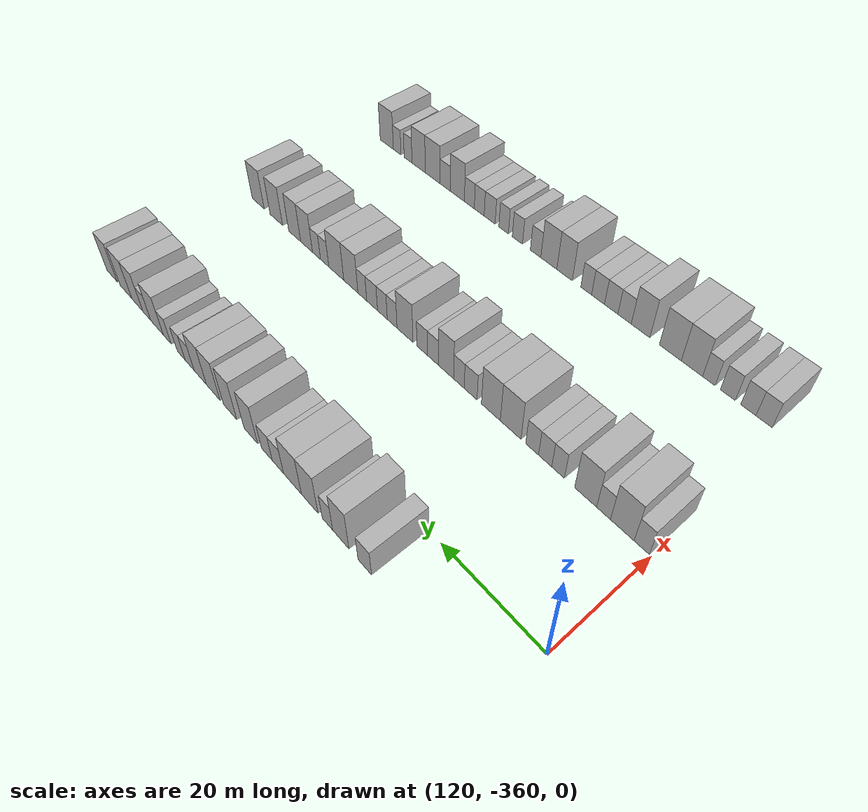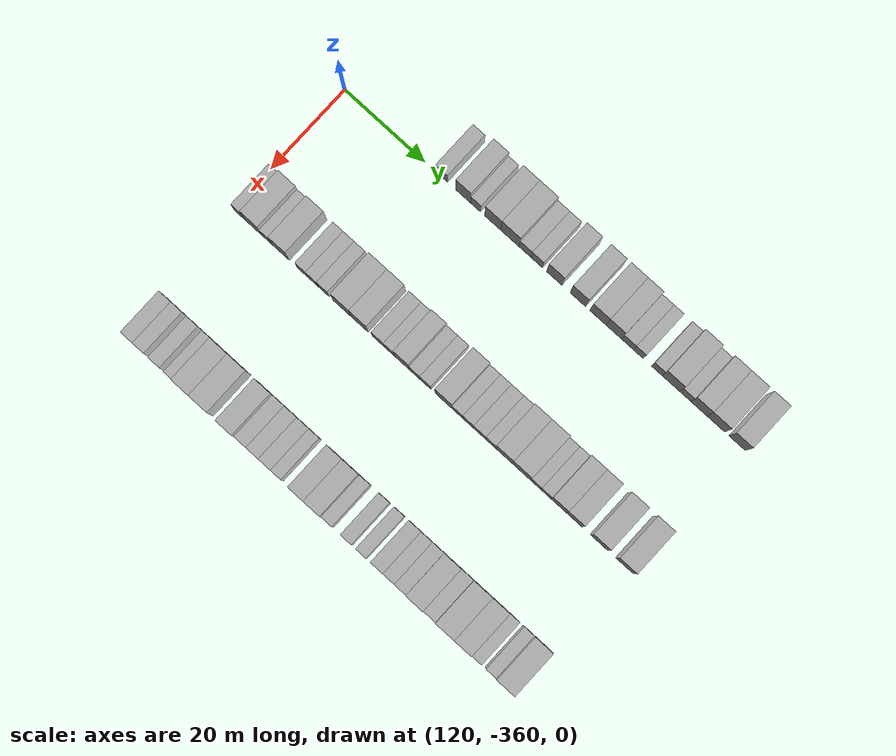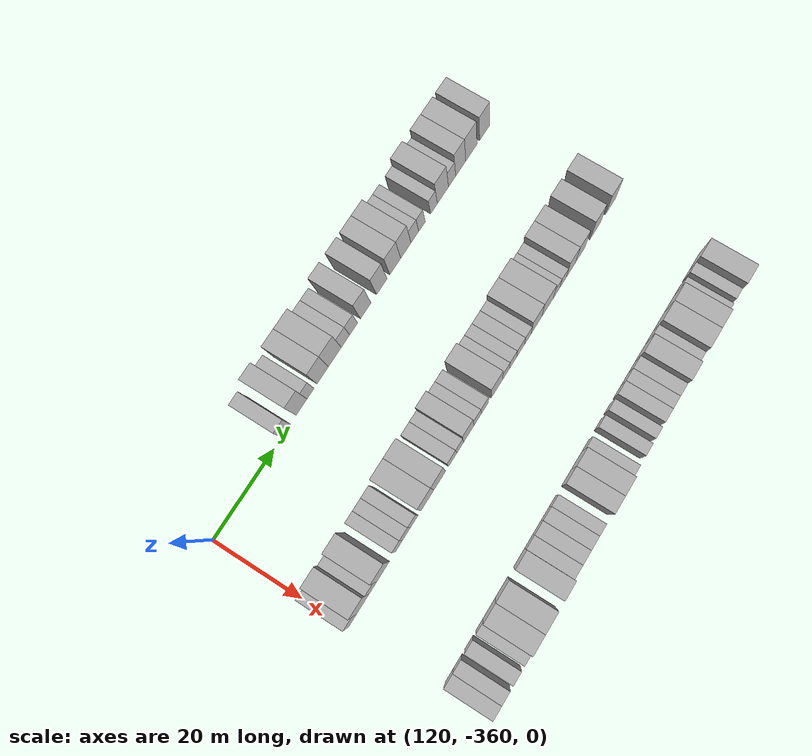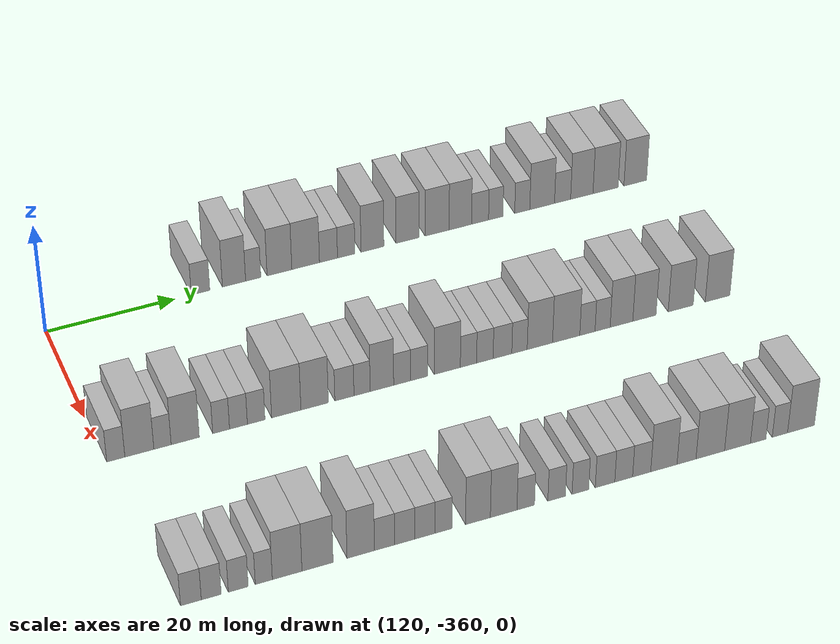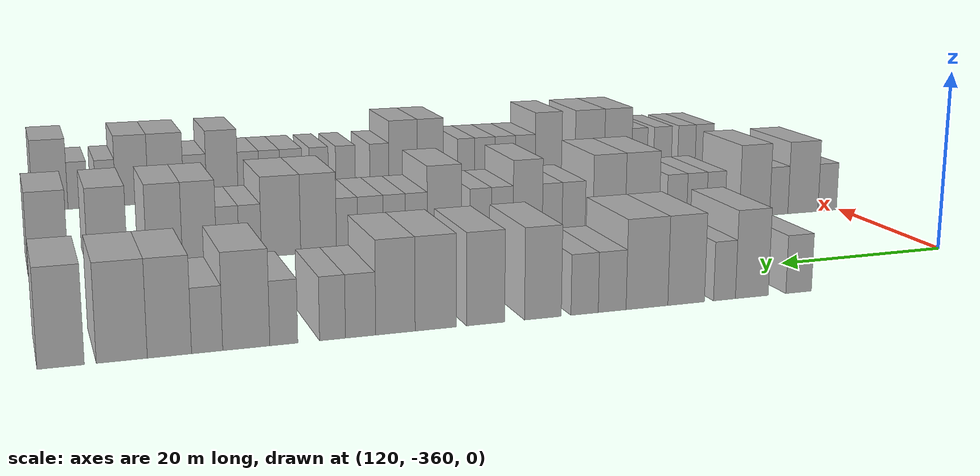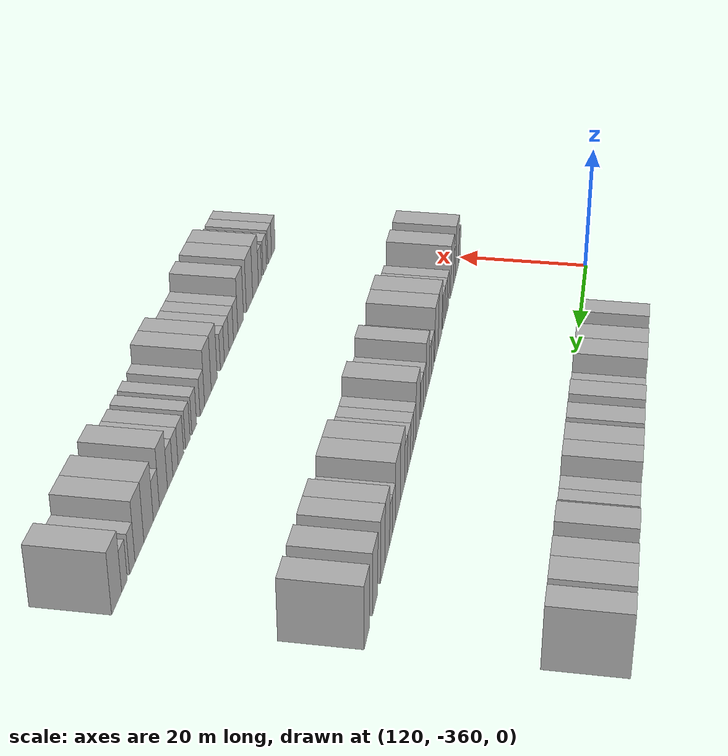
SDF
<sdf version="1.6">
 <world name="default">
  <model name="building_681">
   <static>1</static>
   <pose>115.0000 -335.9888 0 0.000000 0.000000 0.000000</pose>
   <link name="link">
    <pose>0 0 3.00 0 0 0</pose>
    <collision name="collision"><geometry><box><size>10.0000 2.9338 6.0000</size></box></geometry></collision>
    <visual name="visual">
     <cast_shadows>0</cast_shadows>
     <geometry><box><size>10.0000 2.9338 6.0000</size></box></geometry>
     <material>
      <script>
       <uri>model://HANNAS_wall/materials/scripts</uri>
       <uri>model://HANNAS_wall/materials/textures</uri>
       <name>vrc/HANNAS_wall</name>
      </script>
     </material>
    </visual>
   </link>
  </model>
  <model name="building_682">
   <static>1</static>
   <pose>115.0000 -330.6769 0 0.000000 0.000000 0.000000</pose>
   <link name="link">
    <pose>0 0 4.50 0 0 0</pose>
    <collision name="collision"><geometry><box><size>10.0000 3.6901 9.0000</size></box></geometry></collision>
    <visual name="visual">
     <cast_shadows>0</cast_shadows>
     <geometry><box><size>10.0000 3.6901 9.0000</size></box></geometry>
     <material>
      <script>
       <uri>model://HANNAS_wall/materials/scripts</uri>
       <uri>model://HANNAS_wall/materials/textures</uri>
       <name>vrc/HANNAS_wall</name>
      </script>
     </material>
    </visual>
   </link>
  </model>
  <model name="building_683">
   <static>1</static>
   <pose>115.0000 -327.6175 0 0.000000 0.000000 0.000000</pose>
   <link name="link">
    <pose>0 0 3.00 0 0 0</pose>
    <collision name="collision"><geometry><box><size>10.0000 2.4287 6.0000</size></box></geometry></collision>
    <visual name="visual">
     <cast_shadows>0</cast_shadows>
     <geometry><box><size>10.0000 2.4287 6.0000</size></box></geometry>
     <material>
      <script>
       <uri>model://HANNAS_wall/materials/scripts</uri>
       <uri>model://HANNAS_wall/materials/textures</uri>
       <name>vrc/HANNAS_wall</name>
      </script>
     </material>
    </visual>
   </link>
  </model>
  <model name="building_684">
   <static>1</static>
   <pose>115.0000 -323.4110 0 0.000000 0.000000 0.000000</pose>
   <link name="link">
    <pose>0 0 4.50 0 0 0</pose>
    <collision name="collision"><geometry><box><size>10.0000 3.9842 9.0000</size></box></geometry></collision>
    <visual name="visual">
     <cast_shadows>0</cast_shadows>
     <geometry><box><size>10.0000 3.9842 9.0000</size></box></geometry>
     <material>
      <script>
       <uri>model://HANNAS_wall/materials/scripts</uri>
       <uri>model://HANNAS_wall/materials/textures</uri>
       <name>vrc/HANNAS_wall</name>
      </script>
     </material>
    </visual>
   </link>
  </model>
  <model name="building_685">
   <static>1</static>
   <pose>115.0000 -319.1854 0 0.000000 0.000000 0.000000</pose>
   <link name="link">
    <pose>0 0 4.50 0 0 0</pose>
    <collision name="collision"><geometry><box><size>10.0000 4.4669 9.0000</size></box></geometry></collision>
    <visual name="visual">
     <cast_shadows>0</cast_shadows>
     <geometry><box><size>10.0000 4.4669 9.0000</size></box></geometry>
     <material>
      <script>
       <uri>model://HANNAS_wall/materials/scripts</uri>
       <uri>model://HANNAS_wall/materials/textures</uri>
       <name>vrc/HANNAS_wall</name>
      </script>
     </material>
    </visual>
   </link>
  </model>
  <model name="building_686">
   <static>1</static>
   <pose>115.0000 -315.4877 0 0.000000 0.000000 0.000000</pose>
   <link name="link">
    <pose>0 0 3.00 0 0 0</pose>
    <collision name="collision"><geometry><box><size>10.0000 2.9286 6.0000</size></box></geometry></collision>
    <visual name="visual">
     <cast_shadows>0</cast_shadows>
     <geometry><box><size>10.0000 2.9286 6.0000</size></box></geometry>
     <material>
      <script>
       <uri>model://HANNAS_wall/materials/scripts</uri>
       <uri>model://HANNAS_wall/materials/textures</uri>
       <name>vrc/HANNAS_wall</name>
      </script>
     </material>
    </visual>
   </link>
  </model>
  <model name="building_687">
   <static>1</static>
   <pose>115.0000 -312.6045 0 0.000000 0.000000 0.000000</pose>
   <link name="link">
    <pose>0 0 3.00 0 0 0</pose>
    <collision name="collision"><geometry><box><size>10.0000 2.8377 6.0000</size></box></geometry></collision>
    <visual name="visual">
     <cast_shadows>0</cast_shadows>
     <geometry><box><size>10.0000 2.8377 6.0000</size></box></geometry>
     <material>
      <script>
       <uri>model://HANNAS_wall/materials/scripts</uri>
       <uri>model://HANNAS_wall/materials/textures</uri>
       <name>vrc/HANNAS_wall</name>
      </script>
     </material>
    </visual>
   </link>
  </model>
  <model name="building_688">
   <static>1</static>
   <pose>115.0000 -308.3114 0 0.000000 0.000000 0.000000</pose>
   <link name="link">
    <pose>0 0 4.50 0 0 0</pose>
    <collision name="collision"><geometry><box><size>10.0000 3.7486 9.0000</size></box></geometry></collision>
    <visual name="visual">
     <cast_shadows>0</cast_shadows>
     <geometry><box><size>10.0000 3.7486 9.0000</size></box></geometry>
     <material>
      <script>
       <uri>model://HANNAS_wall/materials/scripts</uri>
       <uri>model://HANNAS_wall/materials/textures</uri>
       <name>vrc/HANNAS_wall</name>
      </script>
     </material>
    </visual>
   </link>
  </model>
  <model name="building_689">
   <static>1</static>
   <pose>115.0000 -302.5397 0 0.000000 0.000000 0.000000</pose>
   <link name="link">
    <pose>0 0 4.50 0 0 0</pose>
    <collision name="collision"><geometry><box><size>10.0000 3.7947 9.0000</size></box></geometry></collision>
    <visual name="visual">
     <cast_shadows>0</cast_shadows>
     <geometry><box><size>10.0000 3.7947 9.0000</size></box></geometry>
     <material>
      <script>
       <uri>model://HANNAS_wall/materials/scripts</uri>
       <uri>model://HANNAS_wall/materials/textures</uri>
       <name>vrc/HANNAS_wall</name>
      </script>
     </material>
    </visual>
   </link>
  </model>
  <model name="building_690">
   <static>1</static>
   <pose>115.0000 -297.6399 0 0.000000 0.000000 0.000000</pose>
   <link name="link">
    <pose>0 0 4.50 0 0 0</pose>
    <collision name="collision"><geometry><box><size>10.0000 4.0050 9.0000</size></box></geometry></collision>
    <visual name="visual">
     <cast_shadows>0</cast_shadows>
     <geometry><box><size>10.0000 4.0050 9.0000</size></box></geometry>
     <material>
      <script>
       <uri>model://HANNAS_wall/materials/scripts</uri>
       <uri>model://HANNAS_wall/materials/textures</uri>
       <name>vrc/HANNAS_wall</name>
      </script>
     </material>
    </visual>
   </link>
  </model>
  <model name="building_691">
   <static>1</static>
   <pose>115.0000 -293.7571 0 0.000000 0.000000 0.000000</pose>
   <link name="link">
    <pose>0 0 4.50 0 0 0</pose>
    <collision name="collision"><geometry><box><size>10.0000 3.7605 9.0000</size></box></geometry></collision>
    <visual name="visual">
     <cast_shadows>0</cast_shadows>
     <geometry><box><size>10.0000 3.7605 9.0000</size></box></geometry>
     <material>
      <script>
       <uri>model://HANNAS_wall/materials/scripts</uri>
       <uri>model://HANNAS_wall/materials/textures</uri>
       <name>vrc/HANNAS_wall</name>
      </script>
     </material>
    </visual>
   </link>
  </model>
  <model name="building_692">
   <static>1</static>
   <pose>115.0000 -290.4525 0 0.000000 0.000000 0.000000</pose>
   <link name="link">
    <pose>0 0 3.00 0 0 0</pose>
    <collision name="collision"><geometry><box><size>10.0000 2.8488 6.0000</size></box></geometry></collision>
    <visual name="visual">
     <cast_shadows>0</cast_shadows>
     <geometry><box><size>10.0000 2.8488 6.0000</size></box></geometry>
     <material>
      <script>
       <uri>model://HANNAS_wall/materials/scripts</uri>
       <uri>model://HANNAS_wall/materials/textures</uri>
       <name>vrc/HANNAS_wall</name>
      </script>
     </material>
    </visual>
   </link>
  </model>
  <model name="building_693">
   <static>1</static>
   <pose>115.0000 -287.8225 0 0.000000 0.000000 0.000000</pose>
   <link name="link">
    <pose>0 0 3.00 0 0 0</pose>
    <collision name="collision"><geometry><box><size>10.0000 2.4112 6.0000</size></box></geometry></collision>
    <visual name="visual">
     <cast_shadows>0</cast_shadows>
     <geometry><box><size>10.0000 2.4112 6.0000</size></box></geometry>
     <material>
      <script>
       <uri>model://HANNAS_wall/materials/scripts</uri>
       <uri>model://HANNAS_wall/materials/textures</uri>
       <name>vrc/HANNAS_wall</name>
      </script>
     </material>
    </visual>
   </link>
  </model>
  <model name="building_694">
   <static>1</static>
   <pose>115.0000 -283.3413 0 0.000000 0.000000 0.000000</pose>
   <link name="link">
    <pose>0 0 3.00 0 0 0</pose>
    <collision name="collision"><geometry><box><size>10.0000 2.5512 6.0000</size></box></geometry></collision>
    <visual name="visual">
     <cast_shadows>0</cast_shadows>
     <geometry><box><size>10.0000 2.5512 6.0000</size></box></geometry>
     <material>
      <script>
       <uri>model://HANNAS_wall/materials/scripts</uri>
       <uri>model://HANNAS_wall/materials/textures</uri>
       <name>vrc/HANNAS_wall</name>
      </script>
     </material>
    </visual>
   </link>
  </model>
  <model name="building_695">
   <static>1</static>
   <pose>115.0000 -279.9561 0 0.000000 0.000000 0.000000</pose>
   <link name="link">
    <pose>0 0 4.50 0 0 0</pose>
    <collision name="collision"><geometry><box><size>10.0000 4.2194 9.0000</size></box></geometry></collision>
    <visual name="visual">
     <cast_shadows>0</cast_shadows>
     <geometry><box><size>10.0000 4.2194 9.0000</size></box></geometry>
     <material>
      <script>
       <uri>model://HANNAS_wall/materials/scripts</uri>
       <uri>model://HANNAS_wall/materials/textures</uri>
       <name>vrc/HANNAS_wall</name>
      </script>
     </material>
    </visual>
   </link>
  </model>
  <model name="building_696">
   <static>1</static>
   <pose>115.0000 -276.4718 0 0.000000 0.000000 0.000000</pose>
   <link name="link">
    <pose>0 0 3.00 0 0 0</pose>
    <collision name="collision"><geometry><box><size>10.0000 2.7491 6.0000</size></box></geometry></collision>
    <visual name="visual">
     <cast_shadows>0</cast_shadows>
     <geometry><box><size>10.0000 2.7491 6.0000</size></box></geometry>
     <material>
      <script>
       <uri>model://HANNAS_wall/materials/scripts</uri>
       <uri>model://HANNAS_wall/materials/textures</uri>
       <name>vrc/HANNAS_wall</name>
      </script>
     </material>
    </visual>
   </link>
  </model>
  <model name="building_697">
   <static>1</static>
   <pose>115.0000 -273.1758 0 0.000000 0.000000 0.000000</pose>
   <link name="link">
    <pose>0 0 4.50 0 0 0</pose>
    <collision name="collision"><geometry><box><size>10.0000 3.8430 9.0000</size></box></geometry></collision>
    <visual name="visual">
     <cast_shadows>0</cast_shadows>
     <geometry><box><size>10.0000 3.8430 9.0000</size></box></geometry>
     <material>
      <script>
       <uri>model://HANNAS_wall/materials/scripts</uri>
       <uri>model://HANNAS_wall/materials/textures</uri>
       <name>vrc/HANNAS_wall</name>
      </script>
     </material>
    </visual>
   </link>
  </model>
  <model name="building_698">
   <static>1</static>
   <pose>115.0000 -269.0820 0 0.000000 0.000000 0.000000</pose>
   <link name="link">
    <pose>0 0 4.50 0 0 0</pose>
    <collision name="collision"><geometry><box><size>10.0000 4.3445 9.0000</size></box></geometry></collision>
    <visual name="visual">
     <cast_shadows>0</cast_shadows>
     <geometry><box><size>10.0000 4.3445 9.0000</size></box></geometry>
     <material>
      <script>
       <uri>model://HANNAS_wall/materials/scripts</uri>
       <uri>model://HANNAS_wall/materials/textures</uri>
       <name>vrc/HANNAS_wall</name>
      </script>
     </material>
    </visual>
   </link>
  </model>
  <model name="building_699">
   <static>1</static>
   <pose>115.0000 -263.9409 0 0.000000 0.000000 0.000000</pose>
   <link name="link">
    <pose>0 0 4.50 0 0 0</pose>
    <collision name="collision"><geometry><box><size>10.0000 3.9377 9.0000</size></box></geometry></collision>
    <visual name="visual">
     <cast_shadows>0</cast_shadows>
     <geometry><box><size>10.0000 3.9377 9.0000</size></box></geometry>
     <material>
      <script>
       <uri>model://HANNAS_wall/materials/scripts</uri>
       <uri>model://HANNAS_wall/materials/textures</uri>
       <name>vrc/HANNAS_wall</name>
      </script>
     </material>
    </visual>
   </link>
  </model>
  <model name="building_880">
   <static>1</static>
   <pose>145.0000 -358.3262 0 0.000000 0.000000 0.000000</pose>
   <link name="link">
    <pose>0 0 3.00 0 0 0</pose>
    <collision name="collision"><geometry><box><size>10.0000 2.6548 6.0000</size></box></geometry></collision>
    <visual name="visual">
     <cast_shadows>0</cast_shadows>
     <geometry><box><size>10.0000 2.6548 6.0000</size></box></geometry>
     <material>
      <script>
       <uri>model://HANNAS_wall/materials/scripts</uri>
       <uri>model://HANNAS_wall/materials/textures</uri>
       <name>vrc/HANNAS_wall</name>
      </script>
     </material>
    </visual>
   </link>
  </model>
  <model name="building_881">
   <static>1</static>
   <pose>145.0000 -354.8693 0 0.000000 0.000000 0.000000</pose>
   <link name="link">
    <pose>0 0 4.50 0 0 0</pose>
    <collision name="collision"><geometry><box><size>10.0000 4.2590 9.0000</size></box></geometry></collision>
    <visual name="visual">
     <cast_shadows>0</cast_shadows>
     <geometry><box><size>10.0000 4.2590 9.0000</size></box></geometry>
     <material>
      <script>
       <uri>model://HANNAS_wall/materials/scripts</uri>
       <uri>model://HANNAS_wall/materials/textures</uri>
       <name>vrc/HANNAS_wall</name>
      </script>
     </material>
    </visual>
   </link>
  </model>
  <model name="building_882">
   <static>1</static>
   <pose>145.0000 -351.4625 0 0.000000 0.000000 0.000000</pose>
   <link name="link">
    <pose>0 0 3.00 0 0 0</pose>
    <collision name="collision"><geometry><box><size>10.0000 2.5547 6.0000</size></box></geometry></collision>
    <visual name="visual">
     <cast_shadows>0</cast_shadows>
     <geometry><box><size>10.0000 2.5547 6.0000</size></box></geometry>
     <material>
      <script>
       <uri>model://HANNAS_wall/materials/scripts</uri>
       <uri>model://HANNAS_wall/materials/textures</uri>
       <name>vrc/HANNAS_wall</name>
      </script>
     </material>
    </visual>
   </link>
  </model>
  <model name="building_883">
   <static>1</static>
   <pose>145.0000 -348.0964 0 0.000000 0.000000 0.000000</pose>
   <link name="link">
    <pose>0 0 4.50 0 0 0</pose>
    <collision name="collision"><geometry><box><size>10.0000 4.1775 9.0000</size></box></geometry></collision>
    <visual name="visual">
     <cast_shadows>0</cast_shadows>
     <geometry><box><size>10.0000 4.1775 9.0000</size></box></geometry>
     <material>
      <script>
       <uri>model://HANNAS_wall/materials/scripts</uri>
       <uri>model://HANNAS_wall/materials/textures</uri>
       <name>vrc/HANNAS_wall</name>
      </script>
     </material>
    </visual>
   </link>
  </model>
  <model name="building_884">
   <static>1</static>
   <pose>145.0000 -342.7526 0 0.000000 0.000000 0.000000</pose>
   <link name="link">
    <pose>0 0 3.00 0 0 0</pose>
    <collision name="collision"><geometry><box><size>10.0000 2.5099 6.0000</size></box></geometry></collision>
    <visual name="visual">
     <cast_shadows>0</cast_shadows>
     <geometry><box><size>10.0000 2.5099 6.0000</size></box></geometry>
     <material>
      <script>
       <uri>model://HANNAS_wall/materials/scripts</uri>
       <uri>model://HANNAS_wall/materials/textures</uri>
       <name>vrc/HANNAS_wall</name>
      </script>
     </material>
    </visual>
   </link>
  </model>
  <model name="building_885">
   <static>1</static>
   <pose>145.0000 -340.1597 0 0.000000 0.000000 0.000000</pose>
   <link name="link">
    <pose>0 0 3.00 0 0 0</pose>
    <collision name="collision"><geometry><box><size>10.0000 2.6758 6.0000</size></box></geometry></collision>
    <visual name="visual">
     <cast_shadows>0</cast_shadows>
     <geometry><box><size>10.0000 2.6758 6.0000</size></box></geometry>
     <material>
      <script>
       <uri>model://HANNAS_wall/materials/scripts</uri>
       <uri>model://HANNAS_wall/materials/textures</uri>
       <name>vrc/HANNAS_wall</name>
      </script>
     </material>
    </visual>
   </link>
  </model>
  <model name="building_886">
   <static>1</static>
   <pose>145.0000 -337.4923 0 0.000000 0.000000 0.000000</pose>
   <link name="link">
    <pose>0 0 3.00 0 0 0</pose>
    <collision name="collision"><geometry><box><size>10.0000 2.6591 6.0000</size></box></geometry></collision>
    <visual name="visual">
     <cast_shadows>0</cast_shadows>
     <geometry><box><size>10.0000 2.6591 6.0000</size></box></geometry>
     <material>
      <script>
       <uri>model://HANNAS_wall/materials/scripts</uri>
       <uri>model://HANNAS_wall/materials/textures</uri>
       <name>vrc/HANNAS_wall</name>
      </script>
     </material>
    </visual>
   </link>
  </model>
  <model name="building_887">
   <static>1</static>
   <pose>145.0000 -332.9435 0 0.000000 0.000000 0.000000</pose>
   <link name="link">
    <pose>0 0 4.50 0 0 0</pose>
    <collision name="collision"><geometry><box><size>10.0000 4.4385 9.0000</size></box></geometry></collision>
    <visual name="visual">
     <cast_shadows>0</cast_shadows>
     <geometry><box><size>10.0000 4.4385 9.0000</size></box></geometry>
     <material>
      <script>
       <uri>model://HANNAS_wall/materials/scripts</uri>
       <uri>model://HANNAS_wall/materials/textures</uri>
       <name>vrc/HANNAS_wall</name>
      </script>
     </material>
    </visual>
   </link>
  </model>
  <model name="building_888">
   <static>1</static>
   <pose>145.0000 -328.6318 0 0.000000 0.000000 0.000000</pose>
   <link name="link">
    <pose>0 0 4.50 0 0 0</pose>
    <collision name="collision"><geometry><box><size>10.0000 4.1847 9.0000</size></box></geometry></collision>
    <visual name="visual">
     <cast_shadows>0</cast_shadows>
     <geometry><box><size>10.0000 4.1847 9.0000</size></box></geometry>
     <material>
      <script>
       <uri>model://HANNAS_wall/materials/scripts</uri>
       <uri>model://HANNAS_wall/materials/textures</uri>
       <name>vrc/HANNAS_wall</name>
      </script>
     </material>
    </visual>
   </link>
  </model>
  <model name="building_889">
   <static>1</static>
   <pose>145.0000 -324.0714 0 0.000000 0.000000 0.000000</pose>
   <link name="link">
    <pose>0 0 3.00 0 0 0</pose>
    <collision name="collision"><geometry><box><size>10.0000 2.9361 6.0000</size></box></geometry></collision>
    <visual name="visual">
     <cast_shadows>0</cast_shadows>
     <geometry><box><size>10.0000 2.9361 6.0000</size></box></geometry>
     <material>
      <script>
       <uri>model://HANNAS_wall/materials/scripts</uri>
       <uri>model://HANNAS_wall/materials/textures</uri>
       <name>vrc/HANNAS_wall</name>
      </script>
     </material>
    </visual>
   </link>
  </model>
  <model name="building_890">
   <static>1</static>
   <pose>145.0000 -321.3582 0 0.000000 0.000000 0.000000</pose>
   <link name="link">
    <pose>0 0 3.00 0 0 0</pose>
    <collision name="collision"><geometry><box><size>10.0000 2.4903 6.0000</size></box></geometry></collision>
    <visual name="visual">
     <cast_shadows>0</cast_shadows>
     <geometry><box><size>10.0000 2.4903 6.0000</size></box></geometry>
     <material>
      <script>
       <uri>model://HANNAS_wall/materials/scripts</uri>
       <uri>model://HANNAS_wall/materials/textures</uri>
       <name>vrc/HANNAS_wall</name>
      </script>
     </material>
    </visual>
   </link>
  </model>
  <model name="building_891">
   <static>1</static>
   <pose>145.0000 -318.2907 0 0.000000 0.000000 0.000000</pose>
   <link name="link">
    <pose>0 0 4.50 0 0 0</pose>
    <collision name="collision"><geometry><box><size>10.0000 3.6447 9.0000</size></box></geometry></collision>
    <visual name="visual">
     <cast_shadows>0</cast_shadows>
     <geometry><box><size>10.0000 3.6447 9.0000</size></box></geometry>
     <material>
      <script>
       <uri>model://HANNAS_wall/materials/scripts</uri>
       <uri>model://HANNAS_wall/materials/textures</uri>
       <name>vrc/HANNAS_wall</name>
      </script>
     </material>
    </visual>
   </link>
  </model>
  <model name="building_892">
   <static>1</static>
   <pose>145.0000 -315.1396 0 0.000000 0.000000 0.000000</pose>
   <link name="link">
    <pose>0 0 3.00 0 0 0</pose>
    <collision name="collision"><geometry><box><size>10.0000 2.6577 6.0000</size></box></geometry></collision>
    <visual name="visual">
     <cast_shadows>0</cast_shadows>
     <geometry><box><size>10.0000 2.6577 6.0000</size></box></geometry>
     <material>
      <script>
       <uri>model://HANNAS_wall/materials/scripts</uri>
       <uri>model://HANNAS_wall/materials/textures</uri>
       <name>vrc/HANNAS_wall</name>
      </script>
     </material>
    </visual>
   </link>
  </model>
  <model name="building_893">
   <static>1</static>
   <pose>145.0000 -312.4817 0 0.000000 0.000000 0.000000</pose>
   <link name="link">
    <pose>0 0 3.00 0 0 0</pose>
    <collision name="collision"><geometry><box><size>10.0000 2.6581 6.0000</size></box></geometry></collision>
    <visual name="visual">
     <cast_shadows>0</cast_shadows>
     <geometry><box><size>10.0000 2.6581 6.0000</size></box></geometry>
     <material>
      <script>
       <uri>model://HANNAS_wall/materials/scripts</uri>
       <uri>model://HANNAS_wall/materials/textures</uri>
       <name>vrc/HANNAS_wall</name>
      </script>
     </material>
    </visual>
   </link>
  </model>
  <model name="building_894">
   <static>1</static>
   <pose>145.0000 -308.0989 0 0.000000 0.000000 0.000000</pose>
   <link name="link">
    <pose>0 0 4.50 0 0 0</pose>
    <collision name="collision"><geometry><box><size>10.0000 4.1073 9.0000</size></box></geometry></collision>
    <visual name="visual">
     <cast_shadows>0</cast_shadows>
     <geometry><box><size>10.0000 4.1073 9.0000</size></box></geometry>
     <material>
      <script>
       <uri>model://HANNAS_wall/materials/scripts</uri>
       <uri>model://HANNAS_wall/materials/textures</uri>
       <name>vrc/HANNAS_wall</name>
      </script>
     </material>
    </visual>
   </link>
  </model>
  <model name="building_895">
   <static>1</static>
   <pose>145.0000 -304.7609 0 0.000000 0.000000 0.000000</pose>
   <link name="link">
    <pose>0 0 3.00 0 0 0</pose>
    <collision name="collision"><geometry><box><size>10.0000 2.5686 6.0000</size></box></geometry></collision>
    <visual name="visual">
     <cast_shadows>0</cast_shadows>
     <geometry><box><size>10.0000 2.5686 6.0000</size></box></geometry>
     <material>
      <script>
       <uri>model://HANNAS_wall/materials/scripts</uri>
       <uri>model://HANNAS_wall/materials/textures</uri>
       <name>vrc/HANNAS_wall</name>
      </script>
     </material>
    </visual>
   </link>
  </model>
  <model name="building_896">
   <static>1</static>
   <pose>145.0000 -302.1692 0 0.000000 0.000000 0.000000</pose>
   <link name="link">
    <pose>0 0 3.00 0 0 0</pose>
    <collision name="collision"><geometry><box><size>10.0000 2.6150 6.0000</size></box></geometry></collision>
    <visual name="visual">
     <cast_shadows>0</cast_shadows>
     <geometry><box><size>10.0000 2.6150 6.0000</size></box></geometry>
     <material>
      <script>
       <uri>model://HANNAS_wall/materials/scripts</uri>
       <uri>model://HANNAS_wall/materials/textures</uri>
       <name>vrc/HANNAS_wall</name>
      </script>
     </material>
    </visual>
   </link>
  </model>
  <model name="building_897">
   <static>1</static>
   <pose>145.0000 -299.3754 0 0.000000 0.000000 0.000000</pose>
   <link name="link">
    <pose>0 0 3.00 0 0 0</pose>
    <collision name="collision"><geometry><box><size>10.0000 2.9725 6.0000</size></box></geometry></collision>
    <visual name="visual">
     <cast_shadows>0</cast_shadows>
     <geometry><box><size>10.0000 2.9725 6.0000</size></box></geometry>
     <material>
      <script>
       <uri>model://HANNAS_wall/materials/scripts</uri>
       <uri>model://HANNAS_wall/materials/textures</uri>
       <name>vrc/HANNAS_wall</name>
      </script>
     </material>
    </visual>
   </link>
  </model>
  <model name="building_898">
   <static>1</static>
   <pose>145.0000 -296.6662 0 0.000000 0.000000 0.000000</pose>
   <link name="link">
    <pose>0 0 3.00 0 0 0</pose>
    <collision name="collision"><geometry><box><size>10.0000 2.4459 6.0000</size></box></geometry></collision>
    <visual name="visual">
     <cast_shadows>0</cast_shadows>
     <geometry><box><size>10.0000 2.4459 6.0000</size></box></geometry>
     <material>
      <script>
       <uri>model://HANNAS_wall/materials/scripts</uri>
       <uri>model://HANNAS_wall/materials/textures</uri>
       <name>vrc/HANNAS_wall</name>
      </script>
     </material>
    </visual>
   </link>
  </model>
  <model name="building_899">
   <static>1</static>
   <pose>145.0000 -293.4089 0 0.000000 0.000000 0.000000</pose>
   <link name="link">
    <pose>0 0 4.50 0 0 0</pose>
    <collision name="collision"><geometry><box><size>10.0000 4.0687 9.0000</size></box></geometry></collision>
    <visual name="visual">
     <cast_shadows>0</cast_shadows>
     <geometry><box><size>10.0000 4.0687 9.0000</size></box></geometry>
     <material>
      <script>
       <uri>model://HANNAS_wall/materials/scripts</uri>
       <uri>model://HANNAS_wall/materials/textures</uri>
       <name>vrc/HANNAS_wall</name>
      </script>
     </material>
    </visual>
   </link>
  </model>
  <model name="building_900">
   <static>1</static>
   <pose>145.0000 -289.1741 0 0.000000 0.000000 0.000000</pose>
   <link name="link">
    <pose>0 0 4.50 0 0 0</pose>
    <collision name="collision"><geometry><box><size>10.0000 4.4010 9.0000</size></box></geometry></collision>
    <visual name="visual">
     <cast_shadows>0</cast_shadows>
     <geometry><box><size>10.0000 4.4010 9.0000</size></box></geometry>
     <material>
      <script>
       <uri>model://HANNAS_wall/materials/scripts</uri>
       <uri>model://HANNAS_wall/materials/textures</uri>
       <name>vrc/HANNAS_wall</name>
      </script>
     </material>
    </visual>
   </link>
  </model>
  <model name="building_901">
   <static>1</static>
   <pose>145.0000 -285.7419 0 0.000000 0.000000 0.000000</pose>
   <link name="link">
    <pose>0 0 3.00 0 0 0</pose>
    <collision name="collision"><geometry><box><size>10.0000 2.4634 6.0000</size></box></geometry></collision>
    <visual name="visual">
     <cast_shadows>0</cast_shadows>
     <geometry><box><size>10.0000 2.4634 6.0000</size></box></geometry>
     <material>
      <script>
       <uri>model://HANNAS_wall/materials/scripts</uri>
       <uri>model://HANNAS_wall/materials/textures</uri>
       <name>vrc/HANNAS_wall</name>
      </script>
     </material>
    </visual>
   </link>
  </model>
  <model name="building_902">
   <static>1</static>
   <pose>145.0000 -283.2819 0 0.000000 0.000000 0.000000</pose>
   <link name="link">
    <pose>0 0 3.00 0 0 0</pose>
    <collision name="collision"><geometry><box><size>10.0000 2.4566 6.0000</size></box></geometry></collision>
    <visual name="visual">
     <cast_shadows>0</cast_shadows>
     <geometry><box><size>10.0000 2.4566 6.0000</size></box></geometry>
     <material>
      <script>
       <uri>model://HANNAS_wall/materials/scripts</uri>
       <uri>model://HANNAS_wall/materials/textures</uri>
       <name>vrc/HANNAS_wall</name>
      </script>
     </material>
    </visual>
   </link>
  </model>
  <model name="building_903">
   <static>1</static>
   <pose>145.0000 -280.2048 0 0.000000 0.000000 0.000000</pose>
   <link name="link">
    <pose>0 0 4.50 0 0 0</pose>
    <collision name="collision"><geometry><box><size>10.0000 3.6976 9.0000</size></box></geometry></collision>
    <visual name="visual">
     <cast_shadows>0</cast_shadows>
     <geometry><box><size>10.0000 3.6976 9.0000</size></box></geometry>
     <material>
      <script>
       <uri>model://HANNAS_wall/materials/scripts</uri>
       <uri>model://HANNAS_wall/materials/textures</uri>
       <name>vrc/HANNAS_wall</name>
      </script>
     </material>
    </visual>
   </link>
  </model>
  <model name="building_904">
   <static>1</static>
   <pose>145.0000 -276.4477 0 0.000000 0.000000 0.000000</pose>
   <link name="link">
    <pose>0 0 4.50 0 0 0</pose>
    <collision name="collision"><geometry><box><size>10.0000 3.8166 9.0000</size></box></geometry></collision>
    <visual name="visual">
     <cast_shadows>0</cast_shadows>
     <geometry><box><size>10.0000 3.8166 9.0000</size></box></geometry>
     <material>
      <script>
       <uri>model://HANNAS_wall/materials/scripts</uri>
       <uri>model://HANNAS_wall/materials/textures</uri>
       <name>vrc/HANNAS_wall</name>
      </script>
     </material>
    </visual>
   </link>
  </model>
  <model name="building_905">
   <static>1</static>
   <pose>145.0000 -270.4686 0 0.000000 0.000000 0.000000</pose>
   <link name="link">
    <pose>0 0 4.50 0 0 0</pose>
    <collision name="collision"><geometry><box><size>10.0000 4.1417 9.0000</size></box></geometry></collision>
    <visual name="visual">
     <cast_shadows>0</cast_shadows>
     <geometry><box><size>10.0000 4.1417 9.0000</size></box></geometry>
     <material>
      <script>
       <uri>model://HANNAS_wall/materials/scripts</uri>
       <uri>model://HANNAS_wall/materials/textures</uri>
       <name>vrc/HANNAS_wall</name>
      </script>
     </material>
    </visual>
   </link>
  </model>
  <model name="building_906">
   <static>1</static>
   <pose>145.0000 -264.3434 0 0.000000 0.000000 0.000000</pose>
   <link name="link">
    <pose>0 0 4.50 0 0 0</pose>
    <collision name="collision"><geometry><box><size>10.0000 4.1086 9.0000</size></box></geometry></collision>
    <visual name="visual">
     <cast_shadows>0</cast_shadows>
     <geometry><box><size>10.0000 4.1086 9.0000</size></box></geometry>
     <material>
      <script>
       <uri>model://HANNAS_wall/materials/scripts</uri>
       <uri>model://HANNAS_wall/materials/textures</uri>
       <name>vrc/HANNAS_wall</name>
      </script>
     </material>
    </visual>
   </link>
  </model>
  <model name="building_1104">
   <static>1</static>
   <pose>175.0000 -357.0110 0 0.000000 0.000000 0.000000</pose>
   <link name="link">
    <pose>0 0 3.00 0 0 0</pose>
    <collision name="collision"><geometry><box><size>10.0000 2.9025 6.0000</size></box></geometry></collision>
    <visual name="visual">
     <cast_shadows>0</cast_shadows>
     <geometry><box><size>10.0000 2.9025 6.0000</size></box></geometry>
     <material>
      <script>
       <uri>model://HANNAS_wall/materials/scripts</uri>
       <uri>model://HANNAS_wall/materials/textures</uri>
       <name>vrc/HANNAS_wall</name>
      </script>
     </material>
    </visual>
   </link>
  </model>
  <model name="building_1105">
   <static>1</static>
   <pose>175.0000 -354.1672 0 0.000000 0.000000 0.000000</pose>
   <link name="link">
    <pose>0 0 3.00 0 0 0</pose>
    <collision name="collision"><geometry><box><size>10.0000 2.7850 6.0000</size></box></geometry></collision>
    <visual name="visual">
     <cast_shadows>0</cast_shadows>
     <geometry><box><size>10.0000 2.7850 6.0000</size></box></geometry>
     <material>
      <script>
       <uri>model://HANNAS_wall/materials/scripts</uri>
       <uri>model://HANNAS_wall/materials/textures</uri>
       <name>vrc/HANNAS_wall</name>
      </script>
     </material>
    </visual>
   </link>
  </model>
  <model name="building_1106">
   <static>1</static>
   <pose>175.0000 -350.3739 0 0.000000 0.000000 0.000000</pose>
   <link name="link">
    <pose>0 0 3.00 0 0 0</pose>
    <collision name="collision"><geometry><box><size>10.0000 2.8016 6.0000</size></box></geometry></collision>
    <visual name="visual">
     <cast_shadows>0</cast_shadows>
     <geometry><box><size>10.0000 2.8016 6.0000</size></box></geometry>
     <material>
      <script>
       <uri>model://HANNAS_wall/materials/scripts</uri>
       <uri>model://HANNAS_wall/materials/textures</uri>
       <name>vrc/HANNAS_wall</name>
      </script>
     </material>
    </visual>
   </link>
  </model>
  <model name="building_1107">
   <static>1</static>
   <pose>175.0000 -346.7644 0 0.000000 0.000000 0.000000</pose>
   <link name="link">
    <pose>0 0 3.00 0 0 0</pose>
    <collision name="collision"><geometry><box><size>10.0000 2.4174 6.0000</size></box></geometry></collision>
    <visual name="visual">
     <cast_shadows>0</cast_shadows>
     <geometry><box><size>10.0000 2.4174 6.0000</size></box></geometry>
     <material>
      <script>
       <uri>model://HANNAS_wall/materials/scripts</uri>
       <uri>model://HANNAS_wall/materials/textures</uri>
       <name>vrc/HANNAS_wall</name>
      </script>
     </material>
    </visual>
   </link>
  </model>
  <model name="building_1108">
   <static>1</static>
   <pose>175.0000 -343.4484 0 0.000000 0.000000 0.000000</pose>
   <link name="link">
    <pose>0 0 4.50 0 0 0</pose>
    <collision name="collision"><geometry><box><size>10.0000 4.2145 9.0000</size></box></geometry></collision>
    <visual name="visual">
     <cast_shadows>0</cast_shadows>
     <geometry><box><size>10.0000 4.2145 9.0000</size></box></geometry>
     <material>
      <script>
       <uri>model://HANNAS_wall/materials/scripts</uri>
       <uri>model://HANNAS_wall/materials/textures</uri>
       <name>vrc/HANNAS_wall</name>
      </script>
     </material>
    </visual>
   </link>
  </model>
  <model name="building_1109">
   <static>1</static>
   <pose>175.0000 -339.1086 0 0.000000 0.000000 0.000000</pose>
   <link name="link">
    <pose>0 0 4.50 0 0 0</pose>
    <collision name="collision"><geometry><box><size>10.0000 4.4652 9.0000</size></box></geometry></collision>
    <visual name="visual">
     <cast_shadows>0</cast_shadows>
     <geometry><box><size>10.0000 4.4652 9.0000</size></box></geometry>
     <material>
      <script>
       <uri>model://HANNAS_wall/materials/scripts</uri>
       <uri>model://HANNAS_wall/materials/textures</uri>
       <name>vrc/HANNAS_wall</name>
      </script>
     </material>
    </visual>
   </link>
  </model>
  <model name="building_1110">
   <static>1</static>
   <pose>175.0000 -332.8900 0 0.000000 0.000000 0.000000</pose>
   <link name="link">
    <pose>0 0 4.50 0 0 0</pose>
    <collision name="collision"><geometry><box><size>10.0000 3.9720 9.0000</size></box></geometry></collision>
    <visual name="visual">
     <cast_shadows>0</cast_shadows>
     <geometry><box><size>10.0000 3.9720 9.0000</size></box></geometry>
     <material>
      <script>
       <uri>model://HANNAS_wall/materials/scripts</uri>
       <uri>model://HANNAS_wall/materials/textures</uri>
       <name>vrc/HANNAS_wall</name>
      </script>
     </material>
    </visual>
   </link>
  </model>
  <model name="building_1111">
   <static>1</static>
   <pose>175.0000 -329.4458 0 0.000000 0.000000 0.000000</pose>
   <link name="link">
    <pose>0 0 3.00 0 0 0</pose>
    <collision name="collision"><geometry><box><size>10.0000 2.9163 6.0000</size></box></geometry></collision>
    <visual name="visual">
     <cast_shadows>0</cast_shadows>
     <geometry><box><size>10.0000 2.9163 6.0000</size></box></geometry>
     <material>
      <script>
       <uri>model://HANNAS_wall/materials/scripts</uri>
       <uri>model://HANNAS_wall/materials/textures</uri>
       <name>vrc/HANNAS_wall</name>
      </script>
     </material>
    </visual>
   </link>
  </model>
  <model name="building_1112">
   <static>1</static>
   <pose>175.0000 -326.4941 0 0.000000 0.000000 0.000000</pose>
   <link name="link">
    <pose>0 0 3.00 0 0 0</pose>
    <collision name="collision"><geometry><box><size>10.0000 2.9871 6.0000</size></box></geometry></collision>
    <visual name="visual">
     <cast_shadows>0</cast_shadows>
     <geometry><box><size>10.0000 2.9871 6.0000</size></box></geometry>
     <material>
      <script>
       <uri>model://HANNAS_wall/materials/scripts</uri>
       <uri>model://HANNAS_wall/materials/textures</uri>
       <name>vrc/HANNAS_wall</name>
      </script>
     </material>
    </visual>
   </link>
  </model>
  <model name="building_1113">
   <static>1</static>
   <pose>175.0000 -323.5301 0 0.000000 0.000000 0.000000</pose>
   <link name="link">
    <pose>0 0 3.00 0 0 0</pose>
    <collision name="collision"><geometry><box><size>10.0000 2.9409 6.0000</size></box></geometry></collision>
    <visual name="visual">
     <cast_shadows>0</cast_shadows>
     <geometry><box><size>10.0000 2.9409 6.0000</size></box></geometry>
     <material>
      <script>
       <uri>model://HANNAS_wall/materials/scripts</uri>
       <uri>model://HANNAS_wall/materials/textures</uri>
       <name>vrc/HANNAS_wall</name>
      </script>
     </material>
    </visual>
   </link>
  </model>
  <model name="building_1114">
   <static>1</static>
   <pose>175.0000 -320.8112 0 0.000000 0.000000 0.000000</pose>
   <link name="link">
    <pose>0 0 3.00 0 0 0</pose>
    <collision name="collision"><geometry><box><size>10.0000 2.4969 6.0000</size></box></geometry></collision>
    <visual name="visual">
     <cast_shadows>0</cast_shadows>
     <geometry><box><size>10.0000 2.4969 6.0000</size></box></geometry>
     <material>
      <script>
       <uri>model://HANNAS_wall/materials/scripts</uri>
       <uri>model://HANNAS_wall/materials/textures</uri>
       <name>vrc/HANNAS_wall</name>
      </script>
     </material>
    </visual>
   </link>
  </model>
  <model name="building_1115">
   <static>1</static>
   <pose>175.0000 -315.7194 0 0.000000 0.000000 0.000000</pose>
   <link name="link">
    <pose>0 0 4.50 0 0 0</pose>
    <collision name="collision"><geometry><box><size>10.0000 3.6868 9.0000</size></box></geometry></collision>
    <visual name="visual">
     <cast_shadows>0</cast_shadows>
     <geometry><box><size>10.0000 3.6868 9.0000</size></box></geometry>
     <material>
      <script>
       <uri>model://HANNAS_wall/materials/scripts</uri>
       <uri>model://HANNAS_wall/materials/textures</uri>
       <name>vrc/HANNAS_wall</name>
      </script>
     </material>
    </visual>
   </link>
  </model>
  <model name="building_1116">
   <static>1</static>
   <pose>175.0000 -311.8927 0 0.000000 0.000000 0.000000</pose>
   <link name="link">
    <pose>0 0 4.50 0 0 0</pose>
    <collision name="collision"><geometry><box><size>10.0000 3.9666 9.0000</size></box></geometry></collision>
    <visual name="visual">
     <cast_shadows>0</cast_shadows>
     <geometry><box><size>10.0000 3.9666 9.0000</size></box></geometry>
     <material>
      <script>
       <uri>model://HANNAS_wall/materials/scripts</uri>
       <uri>model://HANNAS_wall/materials/textures</uri>
       <name>vrc/HANNAS_wall</name>
      </script>
     </material>
    </visual>
   </link>
  </model>
  <model name="building_1117">
   <static>1</static>
   <pose>175.0000 -308.5911 0 0.000000 0.000000 0.000000</pose>
   <link name="link">
    <pose>0 0 3.00 0 0 0</pose>
    <collision name="collision"><geometry><box><size>10.0000 2.6366 6.0000</size></box></geometry></collision>
    <visual name="visual">
     <cast_shadows>0</cast_shadows>
     <geometry><box><size>10.0000 2.6366 6.0000</size></box></geometry>
     <material>
      <script>
       <uri>model://HANNAS_wall/materials/scripts</uri>
       <uri>model://HANNAS_wall/materials/textures</uri>
       <name>vrc/HANNAS_wall</name>
      </script>
     </material>
    </visual>
   </link>
  </model>
  <model name="building_1118">
   <static>1</static>
   <pose>175.0000 -303.9444 0 0.000000 0.000000 0.000000</pose>
   <link name="link">
    <pose>0 0 3.00 0 0 0</pose>
    <collision name="collision"><geometry><box><size>10.0000 2.6568 6.0000</size></box></geometry></collision>
    <visual name="visual">
     <cast_shadows>0</cast_shadows>
     <geometry><box><size>10.0000 2.6568 6.0000</size></box></geometry>
     <material>
      <script>
       <uri>model://HANNAS_wall/materials/scripts</uri>
       <uri>model://HANNAS_wall/materials/textures</uri>
       <name>vrc/HANNAS_wall</name>
      </script>
     </material>
    </visual>
   </link>
  </model>
  <model name="building_1119">
   <static>1</static>
   <pose>175.0000 -300.3493 0 0.000000 0.000000 0.000000</pose>
   <link name="link">
    <pose>0 0 3.00 0 0 0</pose>
    <collision name="collision"><geometry><box><size>10.0000 2.5334 6.0000</size></box></geometry></collision>
    <visual name="visual">
     <cast_shadows>0</cast_shadows>
     <geometry><box><size>10.0000 2.5334 6.0000</size></box></geometry>
     <material>
      <script>
       <uri>model://HANNAS_wall/materials/scripts</uri>
       <uri>model://HANNAS_wall/materials/textures</uri>
       <name>vrc/HANNAS_wall</name>
      </script>
     </material>
    </visual>
   </link>
  </model>
  <model name="building_1120">
   <static>1</static>
   <pose>175.0000 -296.5905 0 0.000000 0.000000 0.000000</pose>
   <link name="link">
    <pose>0 0 3.00 0 0 0</pose>
    <collision name="collision"><geometry><box><size>10.0000 2.9843 6.0000</size></box></geometry></collision>
    <visual name="visual">
     <cast_shadows>0</cast_shadows>
     <geometry><box><size>10.0000 2.9843 6.0000</size></box></geometry>
     <material>
      <script>
       <uri>model://HANNAS_wall/materials/scripts</uri>
       <uri>model://HANNAS_wall/materials/textures</uri>
       <name>vrc/HANNAS_wall</name>
      </script>
     </material>
    </visual>
   </link>
  </model>
  <model name="building_1121">
   <static>1</static>
   <pose>175.0000 -293.7358 0 0.000000 0.000000 0.000000</pose>
   <link name="link">
    <pose>0 0 3.00 0 0 0</pose>
    <collision name="collision"><geometry><box><size>10.0000 2.7251 6.0000</size></box></geometry></collision>
    <visual name="visual">
     <cast_shadows>0</cast_shadows>
     <geometry><box><size>10.0000 2.7251 6.0000</size></box></geometry>
     <material>
      <script>
       <uri>model://HANNAS_wall/materials/scripts</uri>
       <uri>model://HANNAS_wall/materials/textures</uri>
       <name>vrc/HANNAS_wall</name>
      </script>
     </material>
    </visual>
   </link>
  </model>
  <model name="building_1122">
   <static>1</static>
   <pose>175.0000 -290.9773 0 0.000000 0.000000 0.000000</pose>
   <link name="link">
    <pose>0 0 3.00 0 0 0</pose>
    <collision name="collision"><geometry><box><size>10.0000 2.7920 6.0000</size></box></geometry></collision>
    <visual name="visual">
     <cast_shadows>0</cast_shadows>
     <geometry><box><size>10.0000 2.7920 6.0000</size></box></geometry>
     <material>
      <script>
       <uri>model://HANNAS_wall/materials/scripts</uri>
       <uri>model://HANNAS_wall/materials/textures</uri>
       <name>vrc/HANNAS_wall</name>
      </script>
     </material>
    </visual>
   </link>
  </model>
  <model name="building_1123">
   <static>1</static>
   <pose>175.0000 -287.5440 0 0.000000 0.000000 0.000000</pose>
   <link name="link">
    <pose>0 0 4.50 0 0 0</pose>
    <collision name="collision"><geometry><box><size>10.0000 4.0746 9.0000</size></box></geometry></collision>
    <visual name="visual">
     <cast_shadows>0</cast_shadows>
     <geometry><box><size>10.0000 4.0746 9.0000</size></box></geometry>
     <material>
      <script>
       <uri>model://HANNAS_wall/materials/scripts</uri>
       <uri>model://HANNAS_wall/materials/textures</uri>
       <name>vrc/HANNAS_wall</name>
      </script>
     </material>
    </visual>
   </link>
  </model>
  <model name="building_1124">
   <static>1</static>
   <pose>175.0000 -284.0315 0 0.000000 0.000000 0.000000</pose>
   <link name="link">
    <pose>0 0 3.00 0 0 0</pose>
    <collision name="collision"><geometry><box><size>10.0000 2.9504 6.0000</size></box></geometry></collision>
    <visual name="visual">
     <cast_shadows>0</cast_shadows>
     <geometry><box><size>10.0000 2.9504 6.0000</size></box></geometry>
     <material>
      <script>
       <uri>model://HANNAS_wall/materials/scripts</uri>
       <uri>model://HANNAS_wall/materials/textures</uri>
       <name>vrc/HANNAS_wall</name>
      </script>
     </material>
    </visual>
   </link>
  </model>
  <model name="building_1125">
   <static>1</static>
   <pose>175.0000 -280.3223 0 0.000000 0.000000 0.000000</pose>
   <link name="link">
    <pose>0 0 4.50 0 0 0</pose>
    <collision name="collision"><geometry><box><size>10.0000 4.4680 9.0000</size></box></geometry></collision>
    <visual name="visual">
     <cast_shadows>0</cast_shadows>
     <geometry><box><size>10.0000 4.4680 9.0000</size></box></geometry>
     <material>
      <script>
       <uri>model://HANNAS_wall/materials/scripts</uri>
       <uri>model://HANNAS_wall/materials/textures</uri>
       <name>vrc/HANNAS_wall</name>
      </script>
     </material>
    </visual>
   </link>
  </model>
  <model name="building_1126">
   <static>1</static>
   <pose>175.0000 -276.0552 0 0.000000 0.000000 0.000000</pose>
   <link name="link">
    <pose>0 0 4.50 0 0 0</pose>
    <collision name="collision"><geometry><box><size>10.0000 4.0662 9.0000</size></box></geometry></collision>
    <visual name="visual">
     <cast_shadows>0</cast_shadows>
     <geometry><box><size>10.0000 4.0662 9.0000</size></box></geometry>
     <material>
      <script>
       <uri>model://HANNAS_wall/materials/scripts</uri>
       <uri>model://HANNAS_wall/materials/textures</uri>
       <name>vrc/HANNAS_wall</name>
      </script>
     </material>
    </visual>
   </link>
  </model>
  <model name="building_1127">
   <static>1</static>
   <pose>175.0000 -272.7966 0 0.000000 0.000000 0.000000</pose>
   <link name="link">
    <pose>0 0 3.00 0 0 0</pose>
    <collision name="collision"><geometry><box><size>10.0000 2.4509 6.0000</size></box></geometry></collision>
    <visual name="visual">
     <cast_shadows>0</cast_shadows>
     <geometry><box><size>10.0000 2.4509 6.0000</size></box></geometry>
     <material>
      <script>
       <uri>model://HANNAS_wall/materials/scripts</uri>
       <uri>model://HANNAS_wall/materials/textures</uri>
       <name>vrc/HANNAS_wall</name>
      </script>
     </material>
    </visual>
   </link>
  </model>
  <model name="building_1128">
   <static>1</static>
   <pose>175.0000 -269.3577 0 0.000000 0.000000 0.000000</pose>
   <link name="link">
    <pose>0 0 3.00 0 0 0</pose>
    <collision name="collision"><geometry><box><size>10.0000 2.4270 6.0000</size></box></geometry></collision>
    <visual name="visual">
     <cast_shadows>0</cast_shadows>
     <geometry><box><size>10.0000 2.4270 6.0000</size></box></geometry>
     <material>
      <script>
       <uri>model://HANNAS_wall/materials/scripts</uri>
       <uri>model://HANNAS_wall/materials/textures</uri>
       <name>vrc/HANNAS_wall</name>
      </script>
     </material>
    </visual>
   </link>
  </model>
  <model name="building_1129">
   <static>1</static>
   <pose>175.0000 -266.0069 0 0.000000 0.000000 0.000000</pose>
   <link name="link">
    <pose>0 0 4.50 0 0 0</pose>
    <collision name="collision"><geometry><box><size>10.0000 4.2745 9.0000</size></box></geometry></collision>
    <visual name="visual">
     <cast_shadows>0</cast_shadows>
     <geometry><box><size>10.0000 4.2745 9.0000</size></box></geometry>
     <material>
      <script>
       <uri>model://HANNAS_wall/materials/scripts</uri>
       <uri>model://HANNAS_wall/materials/textures</uri>
       <name>vrc/HANNAS_wall</name>
      </script>
     </material>
    </visual>
   </link>
  </model>
 </world>
</sdf>
